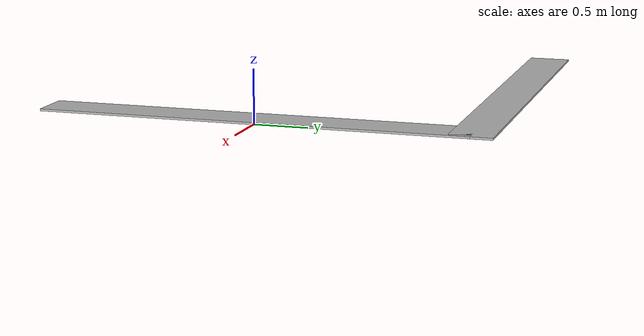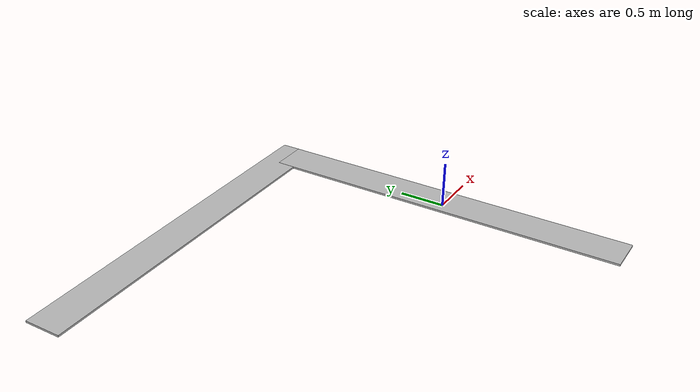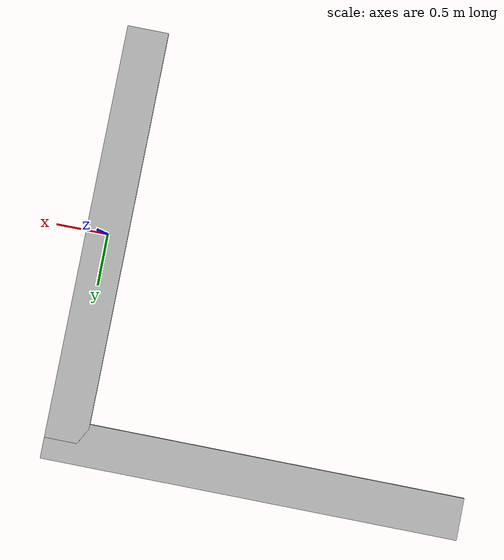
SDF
<?xml version="1.0" ?>
<sdf version="1.5">
  <model name="mbzirc_ugv_wall">
    <static>true</static>
    <link name="link1">
	<pose frame=''>0.0 0 0.05 0 0.0 0</pose>
      <collision name="collision">
        <geometry>
          <box>
            <size>0.4 4.0 0.02</size>
          </box>
        </geometry>
      </collision>
      <visual name="visual">
        <cast_shadows>false</cast_shadows>
        <geometry>
          <box>
            <size>0.4 4.0 0.02</size>
          </box>
        </geometry>
        <material>
          <script>
            <uri>model://mbzirc_ugv_wall/materials/scripts</uri>
            <uri>model://mbzirc_ugv_wall/materials/textures</uri>
            <name>vrc/check</name>
          </script>
        </material>
      </visual>
    </link>
    <link name="link2">
	<pose frame=''>-1.8 2.0 0.05 0 0.0 1.57079</pose>
      <collision name="collision">
        <geometry>
          <box>
            <size>0.4 4.0 0.02</size>
          </box>
        </geometry>
      </collision>
      <visual name="visual">
        <cast_shadows>false</cast_shadows>
        <geometry>
          <box>
            <size>0.4 4.0 0.02</size>
          </box>
        </geometry>
        <material>
          <script>
            <uri>model://mbzirc_ugv_wall/materials/scripts</uri>
            <uri>model://mbzirc_ugv_wall/materials/textures</uri>
            <name>vrc/check</name>
          </script>
        </material>
      </visual>
    </link>
  </model>
</sdf>
